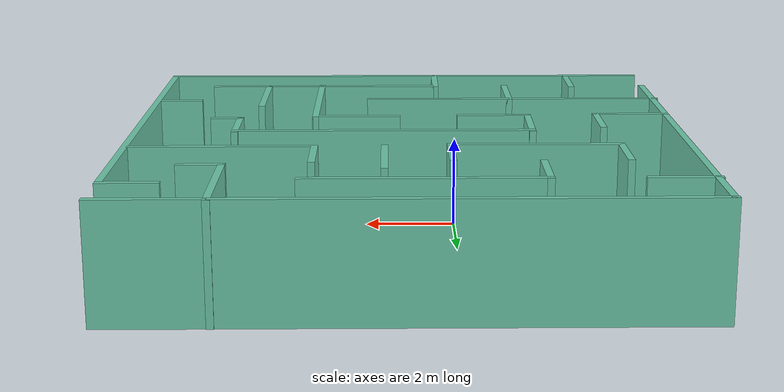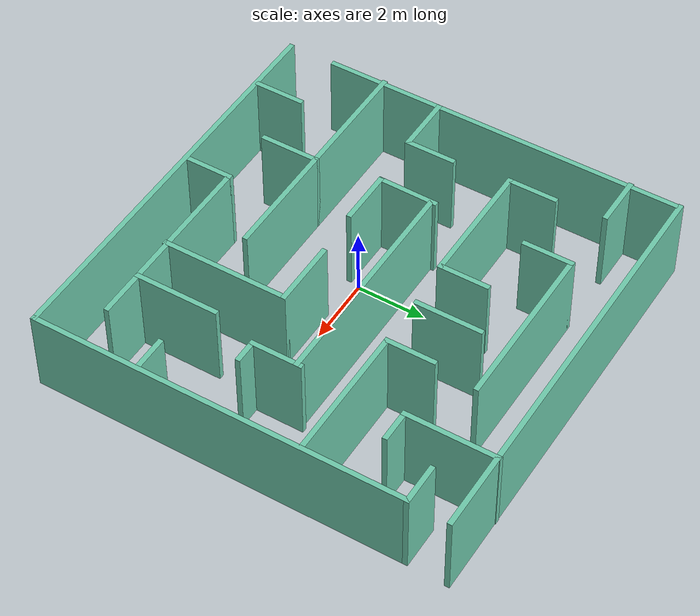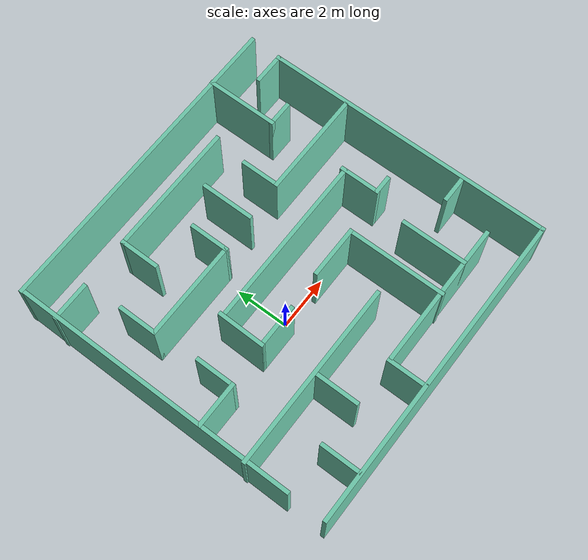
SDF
<?xml version='1.0'?>
<sdf version='1.6'>
  <model name='maze_test'>
    <pose frame=''>1.05712 0.835513 0 0 -0 0</pose>
    <link name='Wall_0'>
      <collision name='Wall_0_Collision'>
        <geometry>
          <box>
            <size>12 0.15 2.5</size>
          </box>
        </geometry>
        <pose frame=''>0 0 1.25 0 -0 0</pose>
      </collision>
      <visual name='Wall_0_Visual'>
        <pose frame=''>0 0 1.25 0 -0 0</pose>
        <geometry>
          <box>
            <size>12 0.15 2.5</size>
          </box>
        </geometry>
        <material>
          <script>
            <uri>file://media/materials/scripts/gazebo.material</uri>
            <name>Gazebo/Grey</name>
          </script>
          <ambient>0.435294 0.796078 0.67451 1</ambient>
        </material>
        <meta>
          <layer>0</layer>
        </meta>
      </visual>
      <pose frame=''>0.027876 -6.02551 0 0 -0 0</pose>
    </link>
    <link name='Wall_10'>
      <collision name='Wall_10_Collision'>
        <geometry>
          <box>
            <size>7 0.15 2.5</size>
          </box>
        </geometry>
        <pose frame=''>0 0 1.25 0 -0 0</pose>
      </collision>
      <visual name='Wall_10_Visual'>
        <pose frame=''>0 0 1.25 0 -0 0</pose>
        <geometry>
          <box>
            <size>7 0.15 2.5</size>
          </box>
        </geometry>
        <material>
          <script>
            <uri>file://media/materials/scripts/gazebo.material</uri>
            <name>Gazebo/Grey</name>
          </script>
          <ambient>0.435294 0.796078 0.67451 1</ambient>
        </material>
        <meta>
          <layer>0</layer>
        </meta>
      </visual>
      <pose frame=''>-2.55306 -3.04683 0 0 -0 3.14159</pose>
    </link>
    <link name='Wall_12'>
      <collision name='Wall_12_Collision'>
        <geometry>
          <box>
            <size>1.5 0.15 2.5</size>
          </box>
        </geometry>
        <pose frame=''>0 0 1.25 0 -0 0</pose>
      </collision>
      <visual name='Wall_12_Visual'>
        <pose frame=''>0 0 1.25 0 -0 0</pose>
        <geometry>
          <box>
            <size>1.5 0.15 2.5</size>
          </box>
        </geometry>
        <material>
          <script>
            <uri>file://media/materials/scripts/gazebo.material</uri>
            <name>Gazebo/Grey</name>
          </script>
          <ambient>0.435294 0.796078 0.67451 1</ambient>
        </material>
        <meta>
          <layer>0</layer>
        </meta>
      </visual>
      <pose frame=''>-4.14486 -5.2779 0 0 -0 1.5708</pose>
    </link>
    <link name='Wall_14'>
      <collision name='Wall_14_Collision'>
        <geometry>
          <box>
            <size>1.75 0.15 2.5</size>
          </box>
        </geometry>
        <pose frame=''>0 0 1.25 0 -0 0</pose>
      </collision>
      <visual name='Wall_14_Visual'>
        <pose frame=''>0 0 1.25 0 -0 0</pose>
        <geometry>
          <box>
            <size>1.75 0.15 2.5</size>
          </box>
        </geometry>
        <material>
          <script>
            <uri>file://media/materials/scripts/gazebo.material</uri>
            <name>Gazebo/Grey</name>
          </script>
          <ambient>0.435294 0.796078 0.67451 1</ambient>
        </material>
        <meta>
          <layer>0</layer>
        </meta>
      </visual>
      <pose frame=''>-2.46239 -3.84683 0 0 -0 -1.5708</pose>
    </link>
    <link name='Wall_16'>
      <collision name='Wall_16_Collision'>
        <geometry>
          <box>
            <size>1.75 0.15 2.5</size>
          </box>
        </geometry>
        <pose frame=''>0 0 1.25 0 -0 0</pose>
      </collision>
      <visual name='Wall_16_Visual'>
        <pose frame=''>0 0 1.25 0 -0 0</pose>
        <geometry>
          <box>
            <size>1.75 0.15 2.5</size>
          </box>
        </geometry>
        <material>
          <script>
            <uri>file://media/materials/scripts/gazebo.material</uri>
            <name>Gazebo/Grey</name>
          </script>
          <ambient>0.435294 0.796078 0.67451 1</ambient>
        </material>
        <meta>
          <layer>0</layer>
        </meta>
      </visual>
      <pose frame=''>-5.11909 -1.27259 0 0 -0 0</pose>
    </link>
    <link name='Wall_17'>
      <collision name='Wall_17_Collision'>
        <geometry>
          <box>
            <size>1.5 0.15 2.5</size>
          </box>
        </geometry>
        <pose frame=''>0 0 1.25 0 -0 0</pose>
      </collision>
      <visual name='Wall_17_Visual'>
        <pose frame=''>0 0 1.25 0 -0 0</pose>
        <geometry>
          <box>
            <size>1.5 0.15 2.5</size>
          </box>
        </geometry>
        <material>
          <script>
            <uri>file://media/materials/scripts/gazebo.material</uri>
            <name>Gazebo/Grey</name>
          </script>
          <ambient>0.435294 0.796078 0.67451 1</ambient>
        </material>
        <meta>
          <layer>0</layer>
        </meta>
      </visual>
      <pose frame=''>-4.31909 -0.597593 0 0 -0 1.5708</pose>
    </link>
    <link name='Wall_19'>
      <collision name='Wall_19_Collision'>
        <geometry>
          <box>
            <size>1.66191 0.15 2.5</size>
          </box>
        </geometry>
        <pose frame=''>0 0 1.25 0 -0 0</pose>
      </collision>
      <visual name='Wall_19_Visual'>
        <pose frame=''>0 0 1.25 0 -0 0</pose>
        <geometry>
          <box>
            <size>1.66191 0.15 2.5</size>
          </box>
        </geometry>
        <material>
          <script>
            <uri>file://media/materials/scripts/gazebo.material</uri>
            <name>Gazebo/Grey</name>
          </script>
          <ambient>0.435294 0.796078 0.67451 1</ambient>
        </material>
        <meta>
          <layer>0</layer>
        </meta>
      </visual>
      <pose frame=''>-1.96012 -1.18082 0 0 -0 0</pose>
    </link>
    <link name='Wall_2'>
      <collision name='Wall_2_Collision'>
        <geometry>
          <box>
            <size>12.0704 0.15 2.5</size>
          </box>
        </geometry>
        <pose frame=''>0 0 1.25 0 -0 0</pose>
      </collision>
      <visual name='Wall_2_Visual'>
        <pose frame=''>0 0 1.25 0 -0 0</pose>
        <geometry>
          <box>
            <size>12.0704 0.15 2.5</size>
          </box>
        </geometry>
        <material>
          <script>
            <uri>file://media/materials/scripts/gazebo.material</uri>
            <name>Gazebo/Grey</name>
          </script>
          <ambient>0.435294 0.796078 0.67451 1</ambient>
        </material>
        <meta>
          <layer>0</layer>
        </meta>
      </visual>
      <pose frame=''>0.017809 6.00354 0 0 -0 -3.14065</pose>
    </link>
    <link name='Wall_21'>
      <collision name='Wall_21_Collision'>
        <geometry>
          <box>
            <size>1.80086 0.15 2.5</size>
          </box>
        </geometry>
        <pose frame=''>0 0 1.25 0 -0 0</pose>
      </collision>
      <visual name='Wall_21_Visual'>
        <pose frame=''>0 0 1.25 0 -0 0</pose>
        <geometry>
          <box>
            <size>1.80086 0.15 2.5</size>
          </box>
        </geometry>
        <material>
          <script>
            <uri>file://media/materials/scripts/gazebo.material</uri>
            <name>Gazebo/Grey</name>
          </script>
          <ambient>0.435294 0.796078 0.67451 1</ambient>
        </material>
        <meta>
          <layer>0</layer>
        </meta>
      </visual>
      <pose frame=''>-2.72764 -0.355473 0 0 -0 1.55679</pose>
    </link>
    <link name='Wall_22'>
      <collision name='Wall_22_Collision'>
        <geometry>
          <box>
            <size>6.66191 0.15 2.5</size>
          </box>
        </geometry>
        <pose frame=''>0 0 1.25 0 -0 0</pose>
      </collision>
      <visual name='Wall_22_Visual'>
        <pose frame=''>0 0 1.25 0 -0 0</pose>
        <geometry>
          <box>
            <size>6.66191 0.15 2.5</size>
          </box>
        </geometry>
        <material>
          <script>
            <uri>file://media/materials/scripts/gazebo.material</uri>
            <name>Gazebo/Grey</name>
          </script>
          <ambient>0.435294 0.796078 0.67451 1</ambient>
        </material>
        <meta>
          <layer>0</layer>
        </meta>
      </visual>
      <pose frame=''>0.539879 0.377354 0 0 -0 0</pose>
    </link>
    <link name='Wall_23'>
      <collision name='Wall_23_Collision'>
        <geometry>
          <box>
            <size>1.5507 0.15 2.5</size>
          </box>
        </geometry>
        <pose frame=''>0 0 1.25 0 -0 0</pose>
      </collision>
      <visual name='Wall_23_Visual'>
        <pose frame=''>0 0 1.25 0 -0 0</pose>
        <geometry>
          <box>
            <size>1.5507 0.15 2.5</size>
          </box>
        </geometry>
        <material>
          <script>
            <uri>file://media/materials/scripts/gazebo.material</uri>
            <name>Gazebo/Grey</name>
          </script>
          <ambient>0.435294 0.796078 0.67451 1</ambient>
        </material>
        <meta>
          <layer>0</layer>
        </meta>
      </visual>
      <pose frame=''>3.79584 -0.230473 0 0 -0 -1.5708</pose>
    </link>
    <link name='Wall_24'>
      <collision name='Wall_24_Collision'>
        <geometry>
          <box>
            <size>0.75 0.15 2.5</size>
          </box>
        </geometry>
        <pose frame=''>0 0 1.25 0 -0 0</pose>
      </collision>
      <visual name='Wall_24_Visual'>
        <pose frame=''>0 0 1.25 0 -0 0</pose>
        <geometry>
          <box>
            <size>0.75 0.15 2.5</size>
          </box>
        </geometry>
        <material>
          <script>
            <uri>file://media/materials/scripts/gazebo.material</uri>
            <name>Gazebo/Grey</name>
          </script>
          <ambient>0.435294 0.796078 0.67451 1</ambient>
        </material>
        <meta>
          <layer>0</layer>
        </meta>
      </visual>
      <pose frame=''>4.09584 -0.930822 0 0 -0 0</pose>
    </link>
    <link name='Wall_26'>
      <collision name='Wall_26_Collision'>
        <geometry>
          <box>
            <size>2 0.15 2.5</size>
          </box>
        </geometry>
        <pose frame=''>0 0 1.25 0 -0 0</pose>
      </collision>
      <visual name='Wall_26_Visual'>
        <pose frame=''>0 0 1.25 0 -0 0</pose>
        <geometry>
          <box>
            <size>2 0.15 2.5</size>
          </box>
        </geometry>
        <material>
          <script>
            <uri>file://media/materials/scripts/gazebo.material</uri>
            <name>Gazebo/Grey</name>
          </script>
          <ambient>0.435294 0.796078 0.67451 1</ambient>
        </material>
        <meta>
          <layer>0</layer>
        </meta>
      </visual>
      <pose frame=''>1.17639 -1.0901 0 0 -0 0</pose>
    </link>
    <link name='Wall_27'>
      <collision name='Wall_27_Collision'>
        <geometry>
          <box>
            <size>3.75 0.15 2.5</size>
          </box>
        </geometry>
        <pose frame=''>0 0 1.25 0 -0 0</pose>
      </collision>
      <visual name='Wall_27_Visual'>
        <pose frame=''>0 0 1.25 0 -0 0</pose>
        <geometry>
          <box>
            <size>3.75 0.15 2.5</size>
          </box>
        </geometry>
        <material>
          <script>
            <uri>file://media/materials/scripts/gazebo.material</uri>
            <name>Gazebo/Grey</name>
          </script>
          <ambient>0.435294 0.796078 0.67451 1</ambient>
        </material>
        <meta>
          <layer>0</layer>
        </meta>
      </visual>
      <pose frame=''>2.10139 -2.8901 0 0 -0 -1.5708</pose>
    </link>
    <link name='Wall_29'>
      <collision name='Wall_29_Collision'>
        <geometry>
          <box>
            <size>1 0.15 2.5</size>
          </box>
        </geometry>
        <pose frame=''>0 0 1.25 0 -0 0</pose>
      </collision>
      <visual name='Wall_29_Visual'>
        <pose frame=''>0 0 1.25 0 -0 0</pose>
        <geometry>
          <box>
            <size>1 0.15 2.5</size>
          </box>
        </geometry>
        <material>
          <script>
            <uri>file://media/materials/scripts/gazebo.material</uri>
            <name>Gazebo/Grey</name>
          </script>
          <ambient>0.435294 0.796078 0.67451 1</ambient>
        </material>
        <meta>
          <layer>0</layer>
        </meta>
      </visual>
      <pose frame=''>5.3882 -2.90683 0 0 -0 0</pose>
    </link>
    <link name='Wall_31'>
      <collision name='Wall_31_Collision'>
        <geometry>
          <box>
            <size>5.5 0.15 2.5</size>
          </box>
        </geometry>
        <pose frame=''>0 0 1.25 0 -0 0</pose>
      </collision>
      <visual name='Wall_31_Visual'>
        <pose frame=''>0 0 1.25 0 -0 0</pose>
        <geometry>
          <box>
            <size>5.5 0.15 2.5</size>
          </box>
        </geometry>
        <material>
          <script>
            <uri>file://media/materials/scripts/gazebo.material</uri>
            <name>Gazebo/Grey</name>
          </script>
          <ambient>0.435294 0.796078 0.67451 1</ambient>
        </material>
        <meta>
          <layer>0</layer>
        </meta>
      </visual>
      <pose frame=''>2.06022 -4.65048 0 0 -0 0</pose>
    </link>
    <link name='Wall_33'>
      <collision name='Wall_33_Collision'>
        <geometry>
          <box>
            <size>2.5 0.15 2.5</size>
          </box>
        </geometry>
        <pose frame=''>0 0 1.25 0 -0 0</pose>
      </collision>
      <visual name='Wall_33_Visual'>
        <pose frame=''>0 0 1.25 0 -0 0</pose>
        <geometry>
          <box>
            <size>2.5 0.15 2.5</size>
          </box>
        </geometry>
        <material>
          <script>
            <uri>file://media/materials/scripts/gazebo.material</uri>
            <name>Gazebo/Grey</name>
          </script>
          <ambient>0.435294 0.796078 0.67451 1</ambient>
        </material>
        <meta>
          <layer>0</layer>
        </meta>
      </visual>
      <pose frame=''>3.42313 -3.47548 0 0 -0 1.5708</pose>
    </link>
    <link name='Wall_35'>
      <collision name='Wall_35_Collision'>
        <geometry>
          <box>
            <size>1.5 0.15 2.5</size>
          </box>
        </geometry>
        <pose frame=''>0 0 1.25 0 -0 0</pose>
      </collision>
      <visual name='Wall_35_Visual'>
        <pose frame=''>0 0 1.25 0 -0 0</pose>
        <geometry>
          <box>
            <size>1.5 0.15 2.5</size>
          </box>
        </geometry>
        <material>
          <script>
            <uri>file://media/materials/scripts/gazebo.material</uri>
            <name>Gazebo/Grey</name>
          </script>
          <ambient>0.435294 0.796078 0.67451 1</ambient>
        </material>
        <meta>
          <layer>0</layer>
        </meta>
      </visual>
      <pose frame=''>-0.737138 -5.32548 0 0 -0 -1.5708</pose>
    </link>
    <link name='Wall_37'>
      <collision name='Wall_37_Collision'>
        <geometry>
          <box>
            <size>1.5 0.15 2.5</size>
          </box>
        </geometry>
        <pose frame=''>0 0 1.25 0 -0 0</pose>
      </collision>
      <visual name='Wall_37_Visual'>
        <pose frame=''>0 0 1.25 0 -0 0</pose>
        <geometry>
          <box>
            <size>1.5 0.15 2.5</size>
          </box>
        </geometry>
        <material>
          <script>
            <uri>file://media/materials/scripts/gazebo.material</uri>
            <name>Gazebo/Grey</name>
          </script>
          <ambient>0.435294 0.796078 0.67451 1</ambient>
        </material>
        <meta>
          <layer>0</layer>
        </meta>
      </visual>
      <pose frame=''>-4.46915 2.41385 0 0 -0 -1.5708</pose>
    </link>
    <link name='Wall_38'>
      <collision name='Wall_38_Collision'>
        <geometry>
          <box>
            <size>3.75 0.15 2.5</size>
          </box>
        </geometry>
        <pose frame=''>0 0 1.25 0 -0 0</pose>
      </collision>
      <visual name='Wall_38_Visual'>
        <pose frame=''>0 0 1.25 0 -0 0</pose>
        <geometry>
          <box>
            <size>3.75 0.15 2.5</size>
          </box>
        </geometry>
        <material>
          <script>
            <uri>file://media/materials/scripts/gazebo.material</uri>
            <name>Gazebo/Grey</name>
          </script>
          <ambient>0.435294 0.796078 0.67451 1</ambient>
        </material>
        <meta>
          <layer>0</layer>
        </meta>
      </visual>
      <pose frame=''>-2.66915 1.73885 0 0 -0 0</pose>
    </link>
    <link name='Wall_39'>
      <collision name='Wall_39_Collision'>
        <geometry>
          <box>
            <size>1.5 0.15 2.5</size>
          </box>
        </geometry>
        <pose frame=''>0 0 1.25 0 -0 0</pose>
      </collision>
      <visual name='Wall_39_Visual'>
        <pose frame=''>0 0 1.25 0 -0 0</pose>
        <geometry>
          <box>
            <size>1.5 0.15 2.5</size>
          </box>
        </geometry>
        <material>
          <script>
            <uri>file://media/materials/scripts/gazebo.material</uri>
            <name>Gazebo/Grey</name>
          </script>
          <ambient>0.435294 0.796078 0.67451 1</ambient>
        </material>
        <meta>
          <layer>0</layer>
        </meta>
      </visual>
      <pose frame=''>-0.869146 2.41385 0 0 -0 1.5708</pose>
    </link>
    <link name='Wall_4'>
      <collision name='Wall_4_Collision'>
        <geometry>
          <box>
            <size>10.75 0.15 2.5</size>
          </box>
        </geometry>
        <pose frame=''>0 0 1.25 0 -0 0</pose>
      </collision>
      <visual name='Wall_4_Visual'>
        <pose frame=''>0 0 1.25 0 -0 0</pose>
        <geometry>
          <box>
            <size>10.75 0.15 2.5</size>
          </box>
        </geometry>
        <material>
          <script>
            <uri>file://media/materials/scripts/gazebo.material</uri>
            <name>Gazebo/Grey</name>
          </script>
          <ambient>0.435294 0.796078 0.67451 1</ambient>
        </material>
        <meta>
          <layer>0</layer>
        </meta>
      </visual>
      <pose frame=''>-5.9236 0.685397 0 0 -0 1.5708</pose>
    </link>
    <link name='Wall_41'>
      <collision name='Wall_41_Collision'>
        <geometry>
          <box>
            <size>1.5 0.15 2.5</size>
          </box>
        </geometry>
        <pose frame=''>0 0 1.25 0 -0 0</pose>
      </collision>
      <visual name='Wall_41_Visual'>
        <pose frame=''>0 0 1.25 0 -0 0</pose>
        <geometry>
          <box>
            <size>1.5 0.15 2.5</size>
          </box>
        </geometry>
        <material>
          <script>
            <uri>file://media/materials/scripts/gazebo.material</uri>
            <name>Gazebo/Grey</name>
          </script>
          <ambient>0.435294 0.796078 0.67451 1</ambient>
        </material>
        <meta>
          <layer>0</layer>
        </meta>
      </visual>
      <pose frame=''>-5.29307 4.52659 0 0 -0 0</pose>
    </link>
    <link name='Wall_43'>
      <collision name='Wall_43_Collision'>
        <geometry>
          <box>
            <size>1.5 0.15 2.5</size>
          </box>
        </geometry>
        <pose frame=''>0 0 1.25 0 -0 0</pose>
      </collision>
      <visual name='Wall_43_Visual'>
        <pose frame=''>0 0 1.25 0 -0 0</pose>
        <geometry>
          <box>
            <size>1.5 0.15 2.5</size>
          </box>
        </geometry>
        <material>
          <script>
            <uri>file://media/materials/scripts/gazebo.material</uri>
            <name>Gazebo/Grey</name>
          </script>
          <ambient>0.435294 0.796078 0.67451 1</ambient>
        </material>
        <meta>
          <layer>0</layer>
        </meta>
      </visual>
      <pose frame=''>-2.69491 3.85562 0 0 -0 1.5708</pose>
    </link>
    <link name='Wall_44'>
      <collision name='Wall_44_Collision'>
        <geometry>
          <box>
            <size>5 0.15 2.5</size>
          </box>
        </geometry>
        <pose frame=''>0 0 1.25 0 -0 0</pose>
      </collision>
      <visual name='Wall_44_Visual'>
        <pose frame=''>0 0 1.25 0 -0 0</pose>
        <geometry>
          <box>
            <size>5 0.15 2.5</size>
          </box>
        </geometry>
        <material>
          <script>
            <uri>file://media/materials/scripts/gazebo.material</uri>
            <name>Gazebo/Grey</name>
          </script>
          <ambient>0.435294 0.796078 0.67451 1</ambient>
        </material>
        <meta>
          <layer>0</layer>
        </meta>
      </visual>
      <pose frame=''>-0.269913 4.53062 0 0 -0 0</pose>
    </link>
    <link name='Wall_46'>
      <collision name='Wall_46_Collision'>
        <geometry>
          <box>
            <size>2.75 0.15 2.5</size>
          </box>
        </geometry>
        <pose frame=''>0 0 1.25 0 -0 0</pose>
      </collision>
      <visual name='Wall_46_Visual'>
        <pose frame=''>0 0 1.25 0 -0 0</pose>
        <geometry>
          <box>
            <size>2.75 0.15 2.5</size>
          </box>
        </geometry>
        <material>
          <script>
            <uri>file://media/materials/scripts/gazebo.material</uri>
            <name>Gazebo/Grey</name>
          </script>
          <ambient>0.435294 0.796078 0.67451 1</ambient>
        </material>
        <meta>
          <layer>0</layer>
        </meta>
      </visual>
      <pose frame=''>3.75963 4.72551 0 0 -0 -1.5708</pose>
    </link>
    <link name='Wall_47'>
      <collision name='Wall_47_Collision'>
        <geometry>
          <box>
            <size>1 0.15 2.5</size>
          </box>
        </geometry>
        <pose frame=''>0 0 1.25 0 -0 0</pose>
      </collision>
      <visual name='Wall_47_Visual'>
        <pose frame=''>0 0 1.25 0 -0 0</pose>
        <geometry>
          <box>
            <size>1 0.15 2.5</size>
          </box>
        </geometry>
        <material>
          <script>
            <uri>file://media/materials/scripts/gazebo.material</uri>
            <name>Gazebo/Grey</name>
          </script>
          <ambient>0.435294 0.796078 0.67451 1</ambient>
        </material>
        <meta>
          <layer>0</layer>
        </meta>
      </visual>
      <pose frame=''>4.18462 3.42551 0 0 -0 0</pose>
    </link>
    <link name='Wall_49'>
      <collision name='Wall_49_Collision'>
        <geometry>
          <box>
            <size>1.25 0.15 2.5</size>
          </box>
        </geometry>
        <pose frame=''>0 0 1.25 0 -0 0</pose>
      </collision>
      <visual name='Wall_49_Visual'>
        <pose frame=''>0 0 1.25 0 -0 0</pose>
        <geometry>
          <box>
            <size>1.25 0.15 2.5</size>
          </box>
        </geometry>
        <material>
          <script>
            <uri>file://media/materials/scripts/gazebo.material</uri>
            <name>Gazebo/Grey</name>
          </script>
          <ambient>0.435294 0.796078 0.67451 1</ambient>
        </material>
        <meta>
          <layer>0</layer>
        </meta>
      </visual>
      <pose frame=''>5.40288 4.82449 0 0 -0 3.14159</pose>
    </link>
    <link name='Wall_51'>
      <collision name='Wall_51_Collision'>
        <geometry>
          <box>
            <size>2 0.15 2.5</size>
          </box>
        </geometry>
        <pose frame=''>0 0 1.25 0 -0 0</pose>
      </collision>
      <visual name='Wall_51_Visual'>
        <pose frame=''>0 0 1.25 0 -0 0</pose>
        <geometry>
          <box>
            <size>2 0.15 2.5</size>
          </box>
        </geometry>
        <material>
          <script>
            <uri>file://media/materials/scripts/gazebo.material</uri>
            <name>Gazebo/Grey</name>
          </script>
          <ambient>0.435294 0.796078 0.67451 1</ambient>
        </material>
        <meta>
          <layer>0</layer>
        </meta>
      </visual>
      <pose frame=''>0.517061 2.77566 0 0 -0 -1.5708</pose>
    </link>
    <link name='Wall_53'>
      <collision name='Wall_53_Collision'>
        <geometry>
          <box>
            <size>1.5 0.15 2.5</size>
          </box>
        </geometry>
        <pose frame=''>0 0 1.25 0 -0 0</pose>
      </collision>
      <visual name='Wall_53_Visual'>
        <pose frame=''>0 0 1.25 0 -0 0</pose>
        <geometry>
          <box>
            <size>1.5 0.15 2.5</size>
          </box>
        </geometry>
        <material>
          <script>
            <uri>file://media/materials/scripts/gazebo.material</uri>
            <name>Gazebo/Grey</name>
          </script>
          <ambient>0.435294 0.796078 0.67451 1</ambient>
        </material>
        <meta>
          <layer>0</layer>
        </meta>
      </visual>
      <pose frame=''>1.98539 2.53621 0 0 -0 -1.5708</pose>
    </link>
    <link name='Wall_54'>
      <collision name='Wall_54_Collision'>
        <geometry>
          <box>
            <size>4 0.15 2.5</size>
          </box>
        </geometry>
        <pose frame=''>0 0 1.25 0 -0 0</pose>
      </collision>
      <visual name='Wall_54_Visual'>
        <pose frame=''>0 0 1.25 0 -0 0</pose>
        <geometry>
          <box>
            <size>4 0.15 2.5</size>
          </box>
        </geometry>
        <material>
          <script>
            <uri>file://media/materials/scripts/gazebo.material</uri>
            <name>Gazebo/Grey</name>
          </script>
          <ambient>0.435294 0.796078 0.67451 1</ambient>
        </material>
        <meta>
          <layer>0</layer>
        </meta>
      </visual>
      <pose frame=''>3.91039 1.86121 0 0 -0 0</pose>
    </link>
    <link name='Wall_8'>
      <collision name='Wall_8_Collision'>
        <geometry>
          <box>
            <size>11 0.15 2.5</size>
          </box>
        </geometry>
        <pose frame=''>0 0 1.25 0 -0 0</pose>
      </collision>
      <visual name='Wall_8_Visual'>
        <pose frame=''>0 0 1.25 0 -0 0</pose>
        <geometry>
          <box>
            <size>11 0.15 2.5</size>
          </box>
        </geometry>
        <material>
          <script>
            <uri>file://media/materials/scripts/gazebo.material</uri>
            <name>Gazebo/Grey</name>
          </script>
          <ambient>0.435294 0.796078 0.67451 1</ambient>
        </material>
        <meta>
          <layer>0</layer>
        </meta>
      </visual>
      <pose frame=''>5.95288 -0.600513 0 0 -0 1.5708</pose>
    </link>
    <static>1</static>
  </model>
</sdf>
